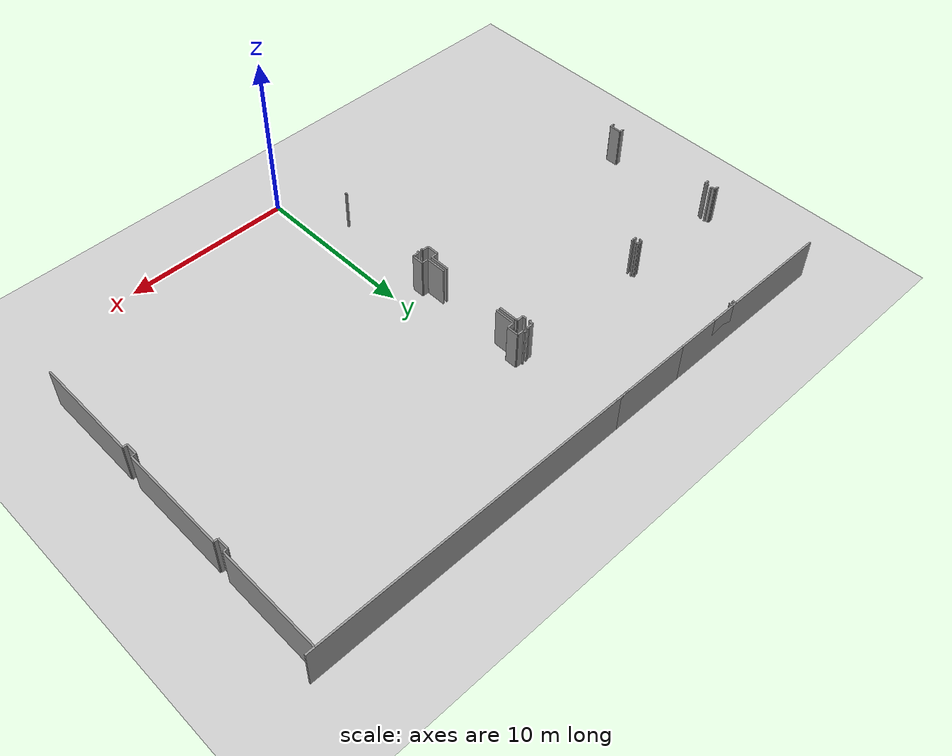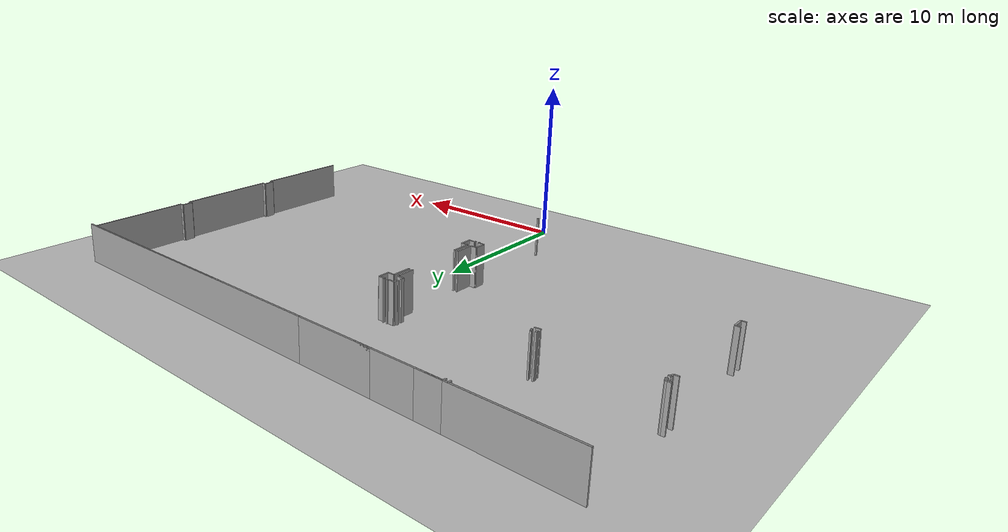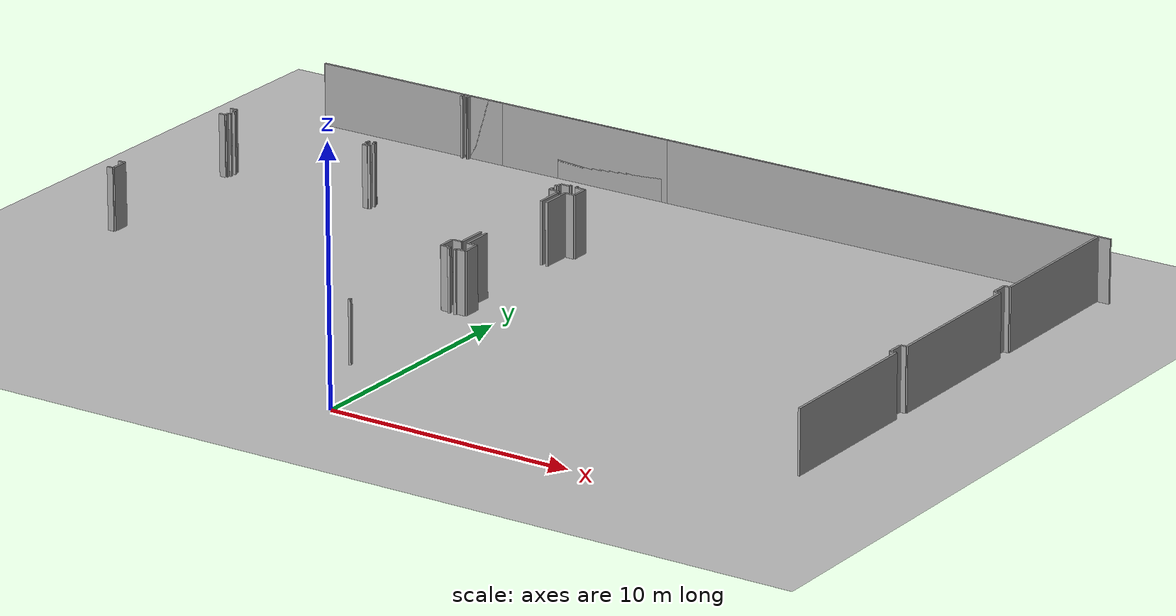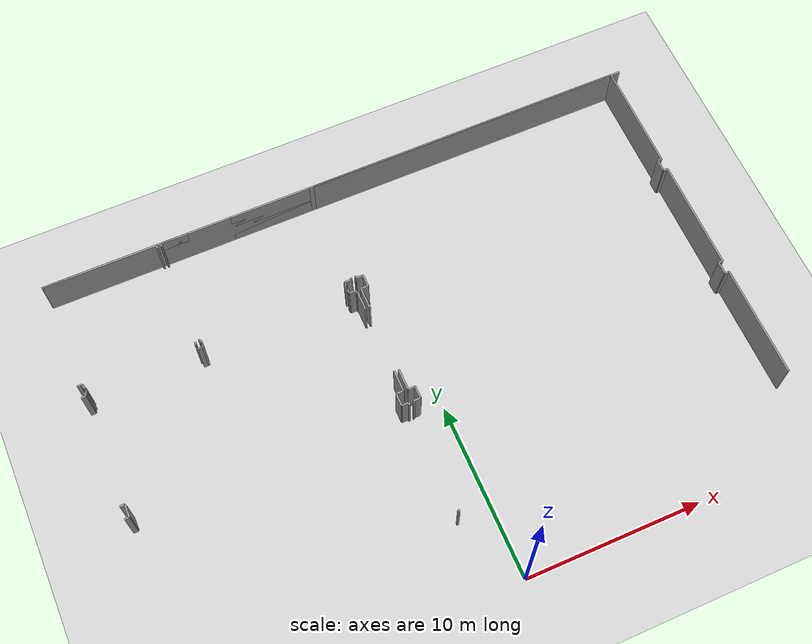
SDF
<sdf version="1.6">
 <world name="default">
  <model name="ground_plane">
   <static>1</static>
   <link name="link">
    <collision name="collision">
     <geometry><plane><normal>0 0 1</normal><size>100 100</size></plane></geometry>
     <surface><friction><ode><mu>100</mu><mu2>50</mu2></ode></friction></surface>
    </collision>
    <visual name="visual">
     <cast_shadows>0</cast_shadows>
     <geometry><plane><normal>0 0 1</normal><size>100 100</size></plane></geometry>
     <material>
      <script><uri>file://media/materials/scripts/gazebo.material</uri><name>Gazebo/Grey</name></script>
     </material>
    </visual>
   </link>
  </model>
  <model name="50055649">
   <static>1</static>
   <link name="Wall_0">
    <collision name="Wall_0_Collision">
     <geometry><box><size>0.191259261142 0.1 2.5</size></box></geometry>
     <pose>0.095629630571 0 1.25 0 0 0</pose>
    </collision>
    <visual name="Wall_0_Visual">
     <pose>0.095629630571 0 1.25 0 0 0</pose>
     <geometry><box><size>0.191259261142 0.1 2.5</size></box></geometry>
     <material>
      <script><uri>file://media/materials/scripts/gazebo.material</uri><name>Gazebo/Grey</name></script>
      <ambient>1 1 1 1</ambient>
     </material>
    </visual>
    <pose>0.208161242359 -6.18383763931 0 0 0 3.14159265359</pose>
   </link>
   <link name="Wall_1">
    <collision name="Wall_1_Collision">
     <geometry><box><size>6.4601151368 0.1 2.5</size></box></geometry>
     <pose>3.2300575684 0 1.25 0 0 0</pose>
    </collision>
    <visual name="Wall_1_Visual">
     <pose>3.2300575684 0 1.25 0 0 0</pose>
     <geometry><box><size>6.4601151368 0.1 2.5</size></box></geometry>
     <material>
      <script><uri>file://media/materials/scripts/gazebo.material</uri><name>Gazebo/Grey</name></script>
      <ambient>1 1 1 1</ambient>
     </material>
    </visual>
    <pose>0.0169019812172 -0.00482913749063 0 0 0 0.0</pose>
   </link>
   <link name="Wall_2">
    <collision name="Wall_2_Collision">
     <geometry><box><size>0.210575811104 0.1 2.5</size></box></geometry>
     <pose>0.105287905552 0 1.25 0 0 0</pose>
    </collision>
    <visual name="Wall_2_Visual">
     <pose>0.105287905552 0 1.25 0 0 0</pose>
     <geometry><box><size>0.210575811104 0.1 2.5</size></box></geometry>
     <material>
      <script><uri>file://media/materials/scripts/gazebo.material</uri><name>Gazebo/Grey</name></script>
      <ambient>1 1 1 1</ambient>
     </material>
    </visual>
    <pose>6.47701711802 -0.00482913749063 0 0 0 -1.57079632679</pose>
   </link>
   <link name="Wall_3">
    <collision name="Wall_3_Collision">
     <geometry><box><size>0.152880326348 0.1 2.5</size></box></geometry>
     <pose>0.076440163174 0 1.25 0 0 0</pose>
    </collision>
    <visual name="Wall_3_Visual">
     <pose>0.076440163174 0 1.25 0 0 0</pose>
     <geometry><box><size>0.152880326348 0.1 2.5</size></box></geometry>
     <material>
      <script><uri>file://media/materials/scripts/gazebo.material</uri><name>Gazebo/Grey</name></script>
      <ambient>1 1 1 1</ambient>
     </material>
    </visual>
    <pose>6.47701711802 -6.26313716021 0 0 0 -1.57079632679</pose>
   </link>
   <link name="Wall_4">
    <collision name="Wall_4_Collision">
     <geometry><box><size>0.0682433376965 0.1 2.5</size></box></geometry>
     <pose>0.0341216688483 0 1.25 0 0 0</pose>
    </collision>
    <visual name="Wall_4_Visual">
     <pose>0.0341216688483 0 1.25 0 0 0</pose>
     <geometry><box><size>0.0682433376965 0.1 2.5</size></box></geometry>
     <material>
      <script><uri>file://media/materials/scripts/gazebo.material</uri><name>Gazebo/Grey</name></script>
      <ambient>1 1 1 1</ambient>
     </material>
    </visual>
    <pose>6.47701711802 -6.41601748656 0 0 0 3.14159265359</pose>
   </link>
   <link name="Wall_5">
    <collision name="Wall_5_Collision">
     <geometry><box><size>0.11462847412 0.1 2.5</size></box></geometry>
     <pose>0.0573142370598 0 1.25 0 0 0</pose>
    </collision>
    <visual name="Wall_5_Visual">
     <pose>0.0573142370598 0 1.25 0 0 0</pose>
     <geometry><box><size>0.11462847412 0.1 2.5</size></box></geometry>
     <material>
      <script><uri>file://media/materials/scripts/gazebo.material</uri><name>Gazebo/Grey</name></script>
      <ambient>1 1 1 1</ambient>
     </material>
    </visual>
    <pose>0.415687071891 -6.41601748656 0 0 0 3.14159265359</pose>
   </link>
   <link name="Wall_6">
    <collision name="Wall_6_Collision">
     <geometry><box><size>0.232179847247 0.1 2.5</size></box></geometry>
     <pose>0.116089923623 0 1.25 0 0 0</pose>
    </collision>
    <visual name="Wall_6_Visual">
     <pose>0.116089923623 0 1.25 0 0 0</pose>
     <geometry><box><size>0.232179847247 0.1 2.5</size></box></geometry>
     <material>
      <script><uri>file://media/materials/scripts/gazebo.material</uri><name>Gazebo/Grey</name></script>
      <ambient>1 1 1 1</ambient>
     </material>
    </visual>
    <pose>0.301058597771 -6.41601748656 0 0 0 1.57079632679</pose>
   </link>
   <link name="Wall_7">
    <collision name="Wall_7_Collision">
     <geometry><box><size>0.0928973554118 0.1 2.5</size></box></geometry>
     <pose>0.0464486777059 0 1.25 0 0 0</pose>
    </collision>
    <visual name="Wall_7_Visual">
     <pose>0.0464486777059 0 1.25 0 0 0</pose>
     <geometry><box><size>0.0928973554118 0.1 2.5</size></box></geometry>
     <material>
      <script><uri>file://media/materials/scripts/gazebo.material</uri><name>Gazebo/Grey</name></script>
      <ambient>1 1 1 1</ambient>
     </material>
    </visual>
    <pose>0.301058597771 -6.18383763931 0 0 0 3.14159265359</pose>
   </link>
   <link name="Wall_8">
    <collision name="Wall_8_Collision">
     <geometry><box><size>1.50974087865 0.1 2.5</size></box></geometry>
     <pose>0.754870439324 0 1.25 0 0 0</pose>
    </collision>
    <visual name="Wall_8_Visual">
     <pose>0.754870439324 0 1.25 0 0 0</pose>
     <geometry><box><size>1.50974087865 0.1 2.5</size></box></geometry>
     <material>
      <script><uri>file://media/materials/scripts/gazebo.material</uri><name>Gazebo/Grey</name></script>
      <ambient>1 1 1 1</ambient>
     </material>
    </visual>
    <pose>6.74147593692 -0.0 0 0 0 0.0</pose>
   </link>
   <link name="Wall_9">
    <collision name="Wall_9_Collision">
     <geometry><box><size>4.66011767846 0.1 2.5</size></box></geometry>
     <pose>2.33005883923 0 1.25 0 0 0</pose>
    </collision>
    <visual name="Wall_9_Visual">
     <pose>2.33005883923 0 1.25 0 0 0</pose>
     <geometry><box><size>4.66011767846 0.1 2.5</size></box></geometry>
     <material>
      <script><uri>file://media/materials/scripts/gazebo.material</uri><name>Gazebo/Grey</name></script>
      <ambient>1 1 1 1</ambient>
     </material>
    </visual>
    <pose>10.7764744755 -0.0 0 0 0 0.0</pose>
   </link>
   <link name="Wall_10">
    <collision name="Wall_10_Collision">
     <geometry><box><size>0.112976400768 0.1 2.5</size></box></geometry>
     <pose>0.0564882003838 0 1.25 0 0 0</pose>
    </collision>
    <visual name="Wall_10_Visual">
     <pose>0.0564882003838 0 1.25 0 0 0</pose>
     <geometry><box><size>0.112976400768 0.1 2.5</size></box></geometry>
     <material>
      <script><uri>file://media/materials/scripts/gazebo.material</uri><name>Gazebo/Grey</name></script>
      <ambient>1 1 1 1</ambient>
     </material>
    </visual>
    <pose>15.4365921539 -6.06565085336 0 0 0 -1.57079632679</pose>
   </link>
   <link name="Wall_11">
    <collision name="Wall_11_Collision">
     <geometry><box><size>0.401199659419 0.1 2.5</size></box></geometry>
     <pose>0.200599829709 0 1.25 0 0 0</pose>
    </collision>
    <visual name="Wall_11_Visual">
     <pose>0.200599829709 0 1.25 0 0 0</pose>
     <geometry><box><size>0.401199659419 0.1 2.5</size></box></geometry>
     <material>
      <script><uri>file://media/materials/scripts/gazebo.material</uri><name>Gazebo/Grey</name></script>
      <ambient>1 1 1 1</ambient>
     </material>
    </visual>
    <pose>15.4365921539 -6.17862725413 0 0 0 3.14159265359</pose>
   </link>
   <link name="Wall_12">
    <collision name="Wall_12_Collision">
     <geometry><box><size>0.226206966666 0.1 2.5</size></box></geometry>
     <pose>0.113103483333 0 1.25 0 0 0</pose>
    </collision>
    <visual name="Wall_12_Visual">
     <pose>0.113103483333 0 1.25 0 0 0</pose>
     <geometry><box><size>0.226206966666 0.1 2.5</size></box></geometry>
     <material>
      <script><uri>file://media/materials/scripts/gazebo.material</uri><name>Gazebo/Grey</name></script>
      <ambient>1 1 1 1</ambient>
     </material>
    </visual>
    <pose>15.0353924945 -6.17862725413 0 0 0 -1.57079632679</pose>
   </link>
   <link name="Wall_13">
    <collision name="Wall_13_Collision">
     <geometry><box><size>0.115136804382 0.1 2.5</size></box></geometry>
     <pose>0.0575684021909 0 1.25 0 0 0</pose>
    </collision>
    <visual name="Wall_13_Visual">
     <pose>0.0575684021909 0 1.25 0 0 0</pose>
     <geometry><box><size>0.115136804382 0.1 2.5</size></box></geometry>
     <material>
      <script><uri>file://media/materials/scripts/gazebo.material</uri><name>Gazebo/Grey</name></script>
      <ambient>1 1 1 1</ambient>
     </material>
    </visual>
    <pose>15.0353924945 -6.40483422079 0 0 0 3.14159265359</pose>
   </link>
   <link name="Wall_14">
    <collision name="Wall_14_Collision">
     <geometry><box><size>0.0974723277714 0.1 2.5</size></box></geometry>
     <pose>0.0487361638857 0 1.25 0 0 0</pose>
    </collision>
    <visual name="Wall_14_Visual">
     <pose>0.0487361638857 0 1.25 0 0 0</pose>
     <geometry><box><size>0.0974723277714 0.1 2.5</size></box></geometry>
     <material>
      <script><uri>file://media/materials/scripts/gazebo.material</uri><name>Gazebo/Grey</name></script>
      <ambient>1 1 1 1</ambient>
     </material>
    </visual>
    <pose>6.84276074165 -6.40483422079 0 0 0 3.14159265359</pose>
   </link>
   <link name="Wall_15">
    <collision name="Wall_15_Collision">
     <geometry><box><size>0.145382454981 0.1 2.5</size></box></geometry>
     <pose>0.0726912274905 0 1.25 0 0 0</pose>
    </collision>
    <visual name="Wall_15_Visual">
     <pose>0.0726912274905 0 1.25 0 0 0</pose>
     <geometry><box><size>0.145382454981 0.1 2.5</size></box></geometry>
     <material>
      <script><uri>file://media/materials/scripts/gazebo.material</uri><name>Gazebo/Grey</name></script>
      <ambient>1 1 1 1</ambient>
     </material>
    </visual>
    <pose>6.74528841388 -6.40483422079 0 0 0 1.57079632679</pose>
   </link>
   <link name="Wall_16">
    <collision name="Wall_16_Collision">
     <geometry><box><size>0.0275769167228 0.1 2.5</size></box></geometry>
     <pose>0.0137884583614 0 1.25 0 0 0</pose>
    </collision>
    <visual name="Wall_16_Visual">
     <pose>0.0137884583614 0 1.25 0 0 0</pose>
     <geometry><box><size>0.0275769167228 0.1 2.5</size></box></geometry>
     <material>
      <script><uri>file://media/materials/scripts/gazebo.material</uri><name>Gazebo/Grey</name></script>
      <ambient>1 1 1 1</ambient>
     </material>
    </visual>
    <pose>6.74528841388 -6.25945176581 0 0 0 3.14159265359</pose>
   </link>
   <link name="Wall_17">
    <collision name="Wall_17_Collision">
     <geometry><box><size>0.0640496130336 0.1 2.5</size></box></geometry>
     <pose>0.0320248065168 0 1.25 0 0 0</pose>
    </collision>
    <visual name="Wall_17_Visual">
     <pose>0.0320248065168 0 1.25 0 0 0</pose>
     <geometry><box><size>0.0640496130336 0.1 2.5</size></box></geometry>
     <material>
      <script><uri>file://media/materials/scripts/gazebo.material</uri><name>Gazebo/Grey</name></script>
      <ambient>1 1 1 1</ambient>
     </material>
    </visual>
    <pose>6.71771149716 -6.25945176581 0 0 0 1.57079632679</pose>
   </link>
   <link name="Wall_18">
    <collision name="Wall_18_Collision">
     <geometry><box><size>0.0062270457116 0.1 2.5</size></box></geometry>
     <pose>0.0031135228558 0 1.25 0 0 0</pose>
    </collision>
    <visual name="Wall_18_Visual">
     <pose>0.0031135228558 0 1.25 0 0 0</pose>
     <geometry><box><size>0.0062270457116 0.1 2.5</size></box></geometry>
     <material>
      <script><uri>file://media/materials/scripts/gazebo.material</uri><name>Gazebo/Grey</name></script>
      <ambient>1 1 1 1</ambient>
     </material>
    </visual>
    <pose>6.71771149716 -0.202061279213 0 0 0 0.0</pose>
   </link>
   <link name="Wall_19">
    <collision name="Wall_19_Collision">
     <geometry><box><size>0.202820908062 0.1 2.5</size></box></geometry>
     <pose>0.101410454031 0 1.25 0 0 0</pose>
    </collision>
    <visual name="Wall_19_Visual">
     <pose>0.101410454031 0 1.25 0 0 0</pose>
     <geometry><box><size>0.202820908062 0.1 2.5</size></box></geometry>
     <material>
      <script><uri>file://media/materials/scripts/gazebo.material</uri><name>Gazebo/Grey</name></script>
      <ambient>1 1 1 1</ambient>
     </material>
    </visual>
    <pose>6.72393854287 -0.202061279213 0 0 0 1.48422082805</pose>
   </link>
   <link name="Wall_32">
    <collision name="Wall_32_Collision">
     <geometry><box><size>0.263060910674 0.1 2.5</size></box></geometry>
     <pose>0.131530455337 0 1.25 0 0 0</pose>
    </collision>
    <visual name="Wall_32_Visual">
     <pose>0.131530455337 0 1.25 0 0 0</pose>
     <geometry><box><size>0.263060910674 0.1 2.5</size></box></geometry>
     <material>
      <script><uri>file://media/materials/scripts/gazebo.material</uri><name>Gazebo/Grey</name></script>
      <ambient>1 1 1 1</ambient>
     </material>
    </visual>
    <pose>0.0216040361423 -13.8977493678 0 0 0 0.0</pose>
   </link>
   <link name="Wall_33">
    <collision name="Wall_33_Collision">
     <geometry><box><size>0.710137376253 0.1 2.5</size></box></geometry>
     <pose>0.355068688127 0 1.25 0 0 0</pose>
    </collision>
    <visual name="Wall_33_Visual">
     <pose>0.355068688127 0 1.25 0 0 0</pose>
     <geometry><box><size>0.710137376253 0.1 2.5</size></box></geometry>
     <material>
      <script><uri>file://media/materials/scripts/gazebo.material</uri><name>Gazebo/Grey</name></script>
      <ambient>1 1 1 1</ambient>
     </material>
    </visual>
    <pose>0.284664946816 -13.8977493678 0 0 0 1.57079632679</pose>
   </link>
   <link name="Wall_34">
    <collision name="Wall_34_Collision">
     <geometry><box><size>0.270812947172 0.1 2.5</size></box></geometry>
     <pose>0.135406473586 0 1.25 0 0 0</pose>
    </collision>
    <visual name="Wall_34_Visual">
     <pose>0.135406473586 0 1.25 0 0 0</pose>
     <geometry><box><size>0.270812947172 0.1 2.5</size></box></geometry>
     <material>
      <script><uri>file://media/materials/scripts/gazebo.material</uri><name>Gazebo/Grey</name></script>
      <ambient>1 1 1 1</ambient>
     </material>
    </visual>
    <pose>0.284664946816 -13.1876119915 0 0 0 3.14159265359</pose>
   </link>
   <link name="Wall_35">
    <collision name="Wall_35_Collision">
     <geometry><box><size>0.270177534344 0.1 2.5</size></box></geometry>
     <pose>0.135088767172 0 1.25 0 0 0</pose>
    </collision>
    <visual name="Wall_35_Visual">
     <pose>0.135088767172 0 1.25 0 0 0</pose>
     <geometry><box><size>0.270177534344 0.1 2.5</size></box></geometry>
     <material>
      <script><uri>file://media/materials/scripts/gazebo.material</uri><name>Gazebo/Grey</name></script>
      <ambient>1 1 1 1</ambient>
     </material>
    </visual>
    <pose>0.0138519996442 -6.8791063554 0 0 0 0.0</pose>
   </link>
   <link name="Wall_36">
    <collision name="Wall_36_Collision">
     <geometry><box><size>0.197613389419 0.1 2.5</size></box></geometry>
     <pose>0.0988066947096 0 1.25 0 0 0</pose>
    </collision>
    <visual name="Wall_36_Visual">
     <pose>0.0988066947096 0 1.25 0 0 0</pose>
     <geometry><box><size>0.197613389419 0.1 2.5</size></box></geometry>
     <material>
      <script><uri>file://media/materials/scripts/gazebo.material</uri><name>Gazebo/Grey</name></script>
      <ambient>1 1 1 1</ambient>
     </material>
    </visual>
    <pose>0.284029533988 -6.8791063554 0 0 0 1.57079632679</pose>
   </link>
   <link name="Wall_37">
    <collision name="Wall_37_Collision">
     <geometry><box><size>0.129370051723 0.1 2.5</size></box></geometry>
     <pose>0.0646850258613 0 1.25 0 0 0</pose>
    </collision>
    <visual name="Wall_37_Visual">
     <pose>0.0646850258613 0 1.25 0 0 0</pose>
     <geometry><box><size>0.129370051723 0.1 2.5</size></box></geometry>
     <material>
      <script><uri>file://media/materials/scripts/gazebo.material</uri><name>Gazebo/Grey</name></script>
      <ambient>1 1 1 1</ambient>
     </material>
    </visual>
    <pose>0.284029533988 -6.68149296598 0 0 0 0.0</pose>
   </link>
   <link name="Wall_38">
    <collision name="Wall_38_Collision">
     <geometry><box><size>0.239042305786 0.1 2.5</size></box></geometry>
     <pose>0.119521152893 0 1.25 0 0 0</pose>
    </collision>
    <visual name="Wall_38_Visual">
     <pose>0.119521152893 0 1.25 0 0 0</pose>
     <geometry><box><size>0.239042305786 0.1 2.5</size></box></geometry>
     <material>
      <script><uri>file://media/materials/scripts/gazebo.material</uri><name>Gazebo/Grey</name></script>
      <ambient>1 1 1 1</ambient>
     </material>
    </visual>
    <pose>6.47091715488 -6.68149296598 0 0 0 0.0</pose>
   </link>
   <link name="Wall_39">
    <collision name="Wall_39_Collision">
     <geometry><box><size>0.0212227884457 0.1 2.5</size></box></geometry>
     <pose>0.0106113942228 0 1.25 0 0 0</pose>
    </collision>
    <visual name="Wall_39_Visual">
     <pose>0.0106113942228 0 1.25 0 0 0</pose>
     <geometry><box><size>0.0212227884457 0.1 2.5</size></box></geometry>
     <material>
      <script><uri>file://media/materials/scripts/gazebo.material</uri><name>Gazebo/Grey</name></script>
      <ambient>1 1 1 1</ambient>
     </material>
    </visual>
    <pose>6.70995946066 -6.68149296598 0 0 0 1.57079632679</pose>
   </link>
   <link name="Wall_40">
    <collision name="Wall_40_Collision">
     <geometry><box><size>0.109291006367 0.1 2.5</size></box></geometry>
     <pose>0.0546455031834 0 1.25 0 0 0</pose>
    </collision>
    <visual name="Wall_40_Visual">
     <pose>0.0546455031834 0 1.25 0 0 0</pose>
     <geometry><box><size>0.109291006367 0.1 2.5</size></box></geometry>
     <material>
      <script><uri>file://media/materials/scripts/gazebo.material</uri><name>Gazebo/Grey</name></script>
      <ambient>1 1 1 1</ambient>
     </material>
    </visual>
    <pose>6.70995946066 -6.66027017753 0 0 0 0.0</pose>
   </link>
   <link name="Wall_41">
    <collision name="Wall_41_Collision">
     <geometry><box><size>0.215150783464 0.1 2.5</size></box></geometry>
     <pose>0.107575391732 0 1.25 0 0 0</pose>
    </collision>
    <visual name="Wall_41_Visual">
     <pose>0.107575391732 0 1.25 0 0 0</pose>
     <geometry><box><size>0.215150783464 0.1 2.5</size></box></geometry>
     <material>
      <script><uri>file://media/materials/scripts/gazebo.material</uri><name>Gazebo/Grey</name></script>
      <ambient>1 1 1 1</ambient>
     </material>
    </visual>
    <pose>15.0116280547 -6.66027017753 0 0 0 -1.57079632679</pose>
   </link>
   <link name="Wall_42">
    <collision name="Wall_42_Collision">
     <geometry><box><size>0.405901714344 0.1 2.5</size></box></geometry>
     <pose>0.202950857172 0 1.25 0 0 0</pose>
    </collision>
    <visual name="Wall_42_Visual">
     <pose>0.202950857172 0 1.25 0 0 0</pose>
     <geometry><box><size>0.405901714344 0.1 2.5</size></box></geometry>
     <material>
      <script><uri>file://media/materials/scripts/gazebo.material</uri><name>Gazebo/Grey</name></script>
      <ambient>1 1 1 1</ambient>
     </material>
    </visual>
    <pose>15.0116280547 -6.875420961 0 0 0 0.0</pose>
   </link>
   <link name="Wall_43">
    <collision name="Wall_43_Collision">
     <geometry><box><size>0.13114920764 0.1 2.5</size></box></geometry>
     <pose>0.0655746038201 0 1.25 0 0 0</pose>
    </collision>
    <visual name="Wall_43_Visual">
     <pose>0.0655746038201 0 1.25 0 0 0</pose>
     <geometry><box><size>0.13114920764 0.1 2.5</size></box></geometry>
     <material>
      <script><uri>file://media/materials/scripts/gazebo.material</uri><name>Gazebo/Grey</name></script>
      <ambient>1 1 1 1</ambient>
     </material>
    </visual>
    <pose>15.4175297691 -6.875420961 0 0 0 -1.57079632679</pose>
   </link>
   <link name="Wall_44">
    <collision name="Wall_44_Collision">
     <geometry><box><size>0.0251623479775 0.1 2.5</size></box></geometry>
     <pose>0.0125811739887 0 1.25 0 0 0</pose>
    </collision>
    <visual name="Wall_44_Visual">
     <pose>0.0125811739887 0 1.25 0 0 0</pose>
     <geometry><box><size>0.0251623479775 0.1 2.5</size></box></geometry>
     <material>
      <script><uri>file://media/materials/scripts/gazebo.material</uri><name>Gazebo/Grey</name></script>
      <ambient>1 1 1 1</ambient>
     </material>
    </visual>
    <pose>15.4175297691 -7.00657016864 0 0 0 0.0</pose>
   </link>
   <link name="Wall_45">
    <collision name="Wall_45_Collision">
     <geometry><box><size>1.0890975867 0.1 2.5</size></box></geometry>
     <pose>0.544548793351 0 1.25 0 0 0</pose>
    </collision>
    <visual name="Wall_45_Visual">
     <pose>0.544548793351 0 1.25 0 0 0</pose>
     <geometry><box><size>1.0890975867 0.1 2.5</size></box></geometry>
     <material>
      <script><uri>file://media/materials/scripts/gazebo.material</uri><name>Gazebo/Grey</name></script>
      <ambient>1 1 1 1</ambient>
     </material>
    </visual>
    <pose>15.4426921171 -7.00657016864 0 0 0 -1.57079632679</pose>
   </link>
   <link name="Wall_46">
    <collision name="Wall_46_Collision">
     <geometry><box><size>1.21757806047 0.1 2.5</size></box></geometry>
     <pose>0.608789030233 0 1.25 0 0 0</pose>
    </collision>
    <visual name="Wall_46_Visual">
     <pose>0.608789030233 0 1.25 0 0 0</pose>
     <geometry><box><size>1.21757806047 0.1 2.5</size></box></geometry>
     <material>
      <script><uri>file://media/materials/scripts/gazebo.material</uri><name>Gazebo/Grey</name></script>
      <ambient>1 1 1 1</ambient>
     </material>
    </visual>
    <pose>15.4426921171 -11.9645693807 0 0 0 -1.57079632679</pose>
   </link>
   <link name="Wall_47">
    <collision name="Wall_47_Collision">
     <geometry><box><size>0.407680870261 0.1 2.5</size></box></geometry>
     <pose>0.203840435131 0 1.25 0 0 0</pose>
    </collision>
    <visual name="Wall_47_Visual">
     <pose>0.203840435131 0 1.25 0 0 0</pose>
     <geometry><box><size>0.407680870261 0.1 2.5</size></box></geometry>
     <material>
      <script><uri>file://media/materials/scripts/gazebo.material</uri><name>Gazebo/Grey</name></script>
      <ambient>1 1 1 1</ambient>
     </material>
    </visual>
    <pose>15.4426921171 -13.1821474412 0 0 0 3.14159265359</pose>
   </link>
   <link name="Wall_48">
    <collision name="Wall_48_Collision">
     <geometry><box><size>0.707468642377 0.1 2.5</size></box></geometry>
     <pose>0.353734321188 0 1.25 0 0 0</pose>
    </collision>
    <visual name="Wall_48_Visual">
     <pose>0.353734321188 0 1.25 0 0 0</pose>
     <geometry><box><size>0.707468642377 0.1 2.5</size></box></geometry>
     <material>
      <script><uri>file://media/materials/scripts/gazebo.material</uri><name>Gazebo/Grey</name></script>
      <ambient>1 1 1 1</ambient>
     </material>
    </visual>
    <pose>15.0350112468 -13.1821474412 0 0 0 -1.57079632679</pose>
   </link>
   <link name="Wall_49">
    <collision name="Wall_49_Collision">
     <geometry><box><size>0.398785090673 0.1 2.5</size></box></geometry>
     <pose>0.199392545337 0 1.25 0 0 0</pose>
    </collision>
    <visual name="Wall_49_Visual">
     <pose>0.199392545337 0 1.25 0 0 0</pose>
     <geometry><box><size>0.398785090673 0.1 2.5</size></box></geometry>
     <material>
      <script><uri>file://media/materials/scripts/gazebo.material</uri><name>Gazebo/Grey</name></script>
      <ambient>1 1 1 1</ambient>
     </material>
    </visual>
    <pose>15.0350112468 -13.8896160836 0 0 0 0.0</pose>
   </link>
   <link name="Wall_50">
    <collision name="Wall_50_Collision">
     <geometry><box><size>0.133817941517 0.1 2.5</size></box></geometry>
     <pose>0.0669089707583 0 1.25 0 0 0</pose>
    </collision>
    <visual name="Wall_50_Visual">
     <pose>0.0669089707583 0 1.25 0 0 0</pose>
     <geometry><box><size>0.133817941517 0.1 2.5</size></box></geometry>
     <material>
      <script><uri>file://media/materials/scripts/gazebo.material</uri><name>Gazebo/Grey</name></script>
      <ambient>1 1 1 1</ambient>
     </material>
    </visual>
    <pose>15.4337963375 -13.8896160836 0 0 0 -1.57079632679</pose>
   </link>
   <link name="Wall_51">
    <collision name="Wall_51_Collision">
     <geometry><box><size>0.128480473764 0.1 2.5</size></box></geometry>
     <pose>0.0642402368819 0 1.25 0 0 0</pose>
    </collision>
    <visual name="Wall_51_Visual">
     <pose>0.0642402368819 0 1.25 0 0 0</pose>
     <geometry><box><size>0.128480473764 0.1 2.5</size></box></geometry>
     <material>
      <script><uri>file://media/materials/scripts/gazebo.material</uri><name>Gazebo/Grey</name></script>
      <ambient>1 1 1 1</ambient>
     </material>
    </visual>
    <pose>15.4337963375 -20.0765037045 0 0 0 -1.57079632679</pose>
   </link>
   <link name="Wall_90">
    <collision name="Wall_90_Collision">
     <geometry><box><size>0.118822198783 0.1 2.5</size></box></geometry>
     <pose>0.0594110993913 0 1.25 0 0 0</pose>
    </collision>
    <visual name="Wall_90_Visual">
     <pose>0.0594110993913 0 1.25 0 0 0</pose>
     <geometry><box><size>0.118822198783 0.1 2.5</size></box></geometry>
     <material>
      <script><uri>file://media/materials/scripts/gazebo.material</uri><name>Gazebo/Grey</name></script>
      <ambient>1 1 1 1</ambient>
     </material>
    </visual>
    <pose>15.6948239271 -14.0165715665 0 0 0 1.57079632679</pose>
   </link>
   <link name="Wall_91">
    <collision name="Wall_91_Collision">
     <geometry><box><size>0.399547586067 0.1 2.5</size></box></geometry>
     <pose>0.199773793033 0 1.25 0 0 0</pose>
    </collision>
    <visual name="Wall_91_Visual">
     <pose>0.199773793033 0 1.25 0 0 0</pose>
     <geometry><box><size>0.399547586067 0.1 2.5</size></box></geometry>
     <material>
      <script><uri>file://media/materials/scripts/gazebo.material</uri><name>Gazebo/Grey</name></script>
      <ambient>1 1 1 1</ambient>
     </material>
    </visual>
    <pose>15.6948239271 -13.8977493678 0 0 0 0.0</pose>
   </link>
   <link name="Wall_92">
    <collision name="Wall_92_Collision">
     <geometry><box><size>0.702004092059 0.1 2.5</size></box></geometry>
     <pose>0.351002046029 0 1.25 0 0 0</pose>
    </collision>
    <visual name="Wall_92_Visual">
     <pose>0.351002046029 0 1.25 0 0 0</pose>
     <geometry><box><size>0.702004092059 0.1 2.5</size></box></geometry>
     <material>
      <script><uri>file://media/materials/scripts/gazebo.material</uri><name>Gazebo/Grey</name></script>
      <ambient>1 1 1 1</ambient>
     </material>
    </visual>
    <pose>16.0943715132 -13.8977493678 0 0 0 1.57079632679</pose>
   </link>
   <link name="Wall_93">
    <collision name="Wall_93_Collision">
     <geometry><box><size>0.40374131073 0.1 2.5</size></box></geometry>
     <pose>0.201870655365 0 1.25 0 0 0</pose>
    </collision>
    <visual name="Wall_93_Visual">
     <pose>0.201870655365 0 1.25 0 0 0</pose>
     <geometry><box><size>0.40374131073 0.1 2.5</size></box></geometry>
     <material>
      <script><uri>file://media/materials/scripts/gazebo.material</uri><name>Gazebo/Grey</name></script>
      <ambient>1 1 1 1</ambient>
     </material>
    </visual>
    <pose>16.0943715132 -13.1957452757 0 0 0 3.14159265359</pose>
   </link>
   <link name="Wall_94">
    <collision name="Wall_94_Collision">
     <geometry><box><size>1.22100928974 0.1 2.5</size></box></geometry>
     <pose>0.610504644868 0 1.25 0 0 0</pose>
    </collision>
    <visual name="Wall_94_Visual">
     <pose>0.610504644868 0 1.25 0 0 0</pose>
     <geometry><box><size>1.22100928974 0.1 2.5</size></box></geometry>
     <material>
      <script><uri>file://media/materials/scripts/gazebo.material</uri><name>Gazebo/Grey</name></script>
      <ambient>1 1 1 1</ambient>
     </material>
    </visual>
    <pose>15.6906302024 -13.1957452757 0 0 0 1.57079632679</pose>
   </link>
   <link name="Wall_95">
    <collision name="Wall_95_Collision">
     <geometry><box><size>1.21656139994 0.1 2.5</size></box></geometry>
     <pose>0.608280699971 0 1.25 0 0 0</pose>
    </collision>
    <visual name="Wall_95_Visual">
     <pose>0.608280699971 0 1.25 0 0 0</pose>
     <geometry><box><size>1.21656139994 0.1 2.5</size></box></geometry>
     <material>
      <script><uri>file://media/materials/scripts/gazebo.material</uri><name>Gazebo/Grey</name></script>
      <ambient>1 1 1 1</ambient>
     </material>
    </visual>
    <pose>15.6906302024 -8.096938581 0 0 0 1.57079632679</pose>
   </link>
   <link name="Wall_96">
    <collision name="Wall_96_Collision">
     <geometry><box><size>0.412382925186 0.1 2.5</size></box></geometry>
     <pose>0.206191462593 0 1.25 0 0 0</pose>
    </collision>
    <visual name="Wall_96_Visual">
     <pose>0.206191462593 0 1.25 0 0 0</pose>
     <geometry><box><size>0.412382925186 0.1 2.5</size></box></geometry>
     <material>
      <script><uri>file://media/materials/scripts/gazebo.material</uri><name>Gazebo/Grey</name></script>
      <ambient>1 1 1 1</ambient>
     </material>
    </visual>
    <pose>15.6906302024 -6.88037718105 0 0 0 0.0</pose>
   </link>
   <link name="Wall_97">
    <collision name="Wall_97_Collision">
     <geometry><box><size>0.693743725298 0.1 2.5</size></box></geometry>
     <pose>0.346871862649 0 1.25 0 0 0</pose>
    </collision>
    <visual name="Wall_97_Visual">
     <pose>0.346871862649 0 1.25 0 0 0</pose>
     <geometry><box><size>0.693743725298 0.1 2.5</size></box></geometry>
     <material>
      <script><uri>file://media/materials/scripts/gazebo.material</uri><name>Gazebo/Grey</name></script>
      <ambient>1 1 1 1</ambient>
     </material>
    </visual>
    <pose>16.1030131276 -6.88037718105 0 0 0 1.57079632679</pose>
   </link>
   <link name="Wall_98">
    <collision name="Wall_98_Collision">
     <geometry><box><size>0.404249640992 0.1 2.5</size></box></geometry>
     <pose>0.202124820496 0 1.25 0 0 0</pose>
    </collision>
    <visual name="Wall_98_Visual">
     <pose>0.202124820496 0 1.25 0 0 0</pose>
     <geometry><box><size>0.404249640992 0.1 2.5</size></box></geometry>
     <material>
      <script><uri>file://media/materials/scripts/gazebo.material</uri><name>Gazebo/Grey</name></script>
      <ambient>1 1 1 1</ambient>
     </material>
    </visual>
    <pose>16.1030131276 -6.18663345576 0 0 0 3.14159265359</pose>
   </link>
   <link name="Wall_99">
    <collision name="Wall_99_Collision">
     <geometry><box><size>0.133945024082 0.1 2.5</size></box></geometry>
     <pose>0.0669725120411 0 1.25 0 0 0</pose>
    </collision>
    <visual name="Wall_99_Visual">
     <pose>0.0669725120411 0 1.25 0 0 0</pose>
     <geometry><box><size>0.133945024082 0.1 2.5</size></box></geometry>
     <material>
      <script><uri>file://media/materials/scripts/gazebo.material</uri><name>Gazebo/Grey</name></script>
      <ambient>1 1 1 1</ambient>
     </material>
    </visual>
    <pose>15.6987634866 -6.18663345576 0 0 0 1.57079632679</pose>
   </link>
   <link name="Wall_100">
    <collision name="Wall_100_Collision">
     <geometry><box><size>18.5907814307 0.1 2.5</size></box></geometry>
     <pose>9.29539071535 0 1.25 0 0 0</pose>
    </collision>
    <visual name="Wall_100_Visual">
     <pose>9.29539071535 0 1.25 0 0 0</pose>
     <geometry><box><size>18.5907814307 0.1 2.5</size></box></geometry>
     <material>
      <script><uri>file://media/materials/scripts/gazebo.material</uri><name>Gazebo/Grey</name></script>
      <ambient>1 1 1 1</ambient>
     </material>
    </visual>
    <pose>15.6987634866 -0.00482913749063 0 0 0 0.0</pose>
   </link>
   <link name="Wall_101">
    <collision name="Wall_101_Collision">
     <geometry><box><size>6.18688762089 0.1 2.5</size></box></geometry>
     <pose>3.09344381044 0 1.25 0 0 0</pose>
    </collision>
    <visual name="Wall_101_Visual">
     <pose>3.09344381044 0 1.25 0 0 0</pose>
     <geometry><box><size>6.18688762089 0.1 2.5</size></box></geometry>
     <material>
      <script><uri>file://media/materials/scripts/gazebo.material</uri><name>Gazebo/Grey</name></script>
      <ambient>1 1 1 1</ambient>
     </material>
    </visual>
    <pose>34.2895449173 -0.00482913749063 0 0 0 -1.57079632679</pose>
   </link>
   <link name="Wall_102">
    <collision name="Wall_102_Collision">
     <geometry><box><size>0.235102746254 0.1 2.5</size></box></geometry>
     <pose>0.117551373127 0 1.25 0 0 0</pose>
    </collision>
    <visual name="Wall_102_Visual">
     <pose>0.117551373127 0 1.25 0 0 0</pose>
     <geometry><box><size>0.235102746254 0.1 2.5</size></box></geometry>
     <material>
      <script><uri>file://media/materials/scripts/gazebo.material</uri><name>Gazebo/Grey</name></script>
      <ambient>1 1 1 1</ambient>
     </material>
    </visual>
    <pose>34.2895449173 -6.19171675838 0 0 0 3.14159265359</pose>
   </link>
   <link name="Wall_103">
    <collision name="Wall_103_Collision">
     <geometry><box><size>0.683195872358 0.1 2.5</size></box></geometry>
     <pose>0.341597936179 0 1.25 0 0 0</pose>
    </collision>
    <visual name="Wall_103_Visual">
     <pose>0.341597936179 0 1.25 0 0 0</pose>
     <geometry><box><size>0.683195872358 0.1 2.5</size></box></geometry>
     <material>
      <script><uri>file://media/materials/scripts/gazebo.material</uri><name>Gazebo/Grey</name></script>
      <ambient>1 1 1 1</ambient>
     </material>
    </visual>
    <pose>34.0544421711 -6.19171675838 0 0 0 -1.57079632679</pose>
   </link>
   <link name="Wall_104">
    <collision name="Wall_104_Collision">
     <geometry><box><size>0.243617278146 0.1 2.5</size></box></geometry>
     <pose>0.121808639073 0 1.25 0 0 0</pose>
    </collision>
    <visual name="Wall_104_Visual">
     <pose>0.121808639073 0 1.25 0 0 0</pose>
     <geometry><box><size>0.243617278146 0.1 2.5</size></box></geometry>
     <material>
      <script><uri>file://media/materials/scripts/gazebo.material</uri><name>Gazebo/Grey</name></script>
      <ambient>1 1 1 1</ambient>
     </material>
    </visual>
    <pose>34.0544421711 -6.87491263074 0 0 0 0.0</pose>
   </link>
   <link name="Wall_105">
    <collision name="Wall_105_Collision">
     <geometry><box><size>6.32057847984 0.1 2.5</size></box></geometry>
     <pose>3.16028923992 0 1.25 0 0 0</pose>
    </collision>
    <visual name="Wall_105_Visual">
     <pose>3.16028923992 0 1.25 0 0 0</pose>
     <geometry><box><size>6.32057847984 0.1 2.5</size></box></geometry>
     <material>
      <script><uri>file://media/materials/scripts/gazebo.material</uri><name>Gazebo/Grey</name></script>
      <ambient>1 1 1 1</ambient>
     </material>
    </visual>
    <pose>34.2980594492 -6.87491263074 0 0 0 -1.57079632679</pose>
   </link>
   <link name="Wall_106">
    <collision name="Wall_106_Collision">
     <geometry><box><size>0.244761021236 0.1 2.5</size></box></geometry>
     <pose>0.122380510618 0 1.25 0 0 0</pose>
    </collision>
    <visual name="Wall_106_Visual">
     <pose>0.122380510618 0 1.25 0 0 0</pose>
     <geometry><box><size>0.244761021236 0.1 2.5</size></box></geometry>
     <material>
      <script><uri>file://media/materials/scripts/gazebo.material</uri><name>Gazebo/Grey</name></script>
      <ambient>1 1 1 1</ambient>
     </material>
    </visual>
    <pose>34.2980594492 -13.1954911106 0 0 0 3.14159265359</pose>
   </link>
   <link name="Wall_107">
    <collision name="Wall_107_Collision">
     <geometry><box><size>0.697810367396 0.1 2.5</size></box></geometry>
     <pose>0.348905183698 0 1.25 0 0 0</pose>
    </collision>
    <visual name="Wall_107_Visual">
     <pose>0.348905183698 0 1.25 0 0 0</pose>
     <geometry><box><size>0.697810367396 0.1 2.5</size></box></geometry>
     <material>
      <script><uri>file://media/materials/scripts/gazebo.material</uri><name>Gazebo/Grey</name></script>
      <ambient>1 1 1 1</ambient>
     </material>
    </visual>
    <pose>34.053298428 -13.1954911106 0 0 0 -1.57079632679</pose>
   </link>
   <link name="Wall_108">
    <collision name="Wall_108_Collision">
     <geometry><box><size>0.247175589981 0.1 2.5</size></box></geometry>
     <pose>0.12358779499 0 1.25 0 0 0</pose>
    </collision>
    <visual name="Wall_108_Visual">
     <pose>0.12358779499 0 1.25 0 0 0</pose>
     <geometry><box><size>0.247175589981 0.1 2.5</size></box></geometry>
     <material>
      <script><uri>file://media/materials/scripts/gazebo.material</uri><name>Gazebo/Grey</name></script>
      <ambient>1 1 1 1</ambient>
     </material>
    </visual>
    <pose>34.053298428 -13.893301478 0 0 0 0.0</pose>
   </link>
   <link name="Wall_109">
    <collision name="Wall_109_Collision">
     <geometry><box><size>6.31498684695 0.1 2.5</size></box></geometry>
     <pose>3.15749342348 0 1.25 0 0 0</pose>
    </collision>
    <visual name="Wall_109_Visual">
     <pose>3.15749342348 0 1.25 0 0 0</pose>
     <geometry><box><size>6.31498684695 0.1 2.5</size></box></geometry>
     <material>
      <script><uri>file://media/materials/scripts/gazebo.material</uri><name>Gazebo/Grey</name></script>
      <ambient>1 1 1 1</ambient>
     </material>
    </visual>
    <pose>34.300474018 -13.893301478 0 0 0 -1.57079632679</pose>
   </link>
   <link name="Wall_182">
    <collision name="Wall_182_Collision">
     <geometry><box><size>34.8185896377 0.1 2.5</size></box></geometry>
     <pose>17.4092948188 0 1.25 0 0 0</pose>
    </collision>
    <visual name="Wall_182_Visual">
     <pose>17.4092948188 0 1.25 0 0 0</pose>
     <geometry><box><size>34.8185896377 0.1 2.5</size></box></geometry>
     <material>
      <script><uri>file://media/materials/scripts/gazebo.material</uri><name>Gazebo/Grey</name></script>
      <ambient>1 1 1 1</ambient>
     </material>
    </visual>
   </link>
   <pose>-17.4 24.1279607061 0 0 0 0</pose>
  </model>
 </world>
</sdf>
